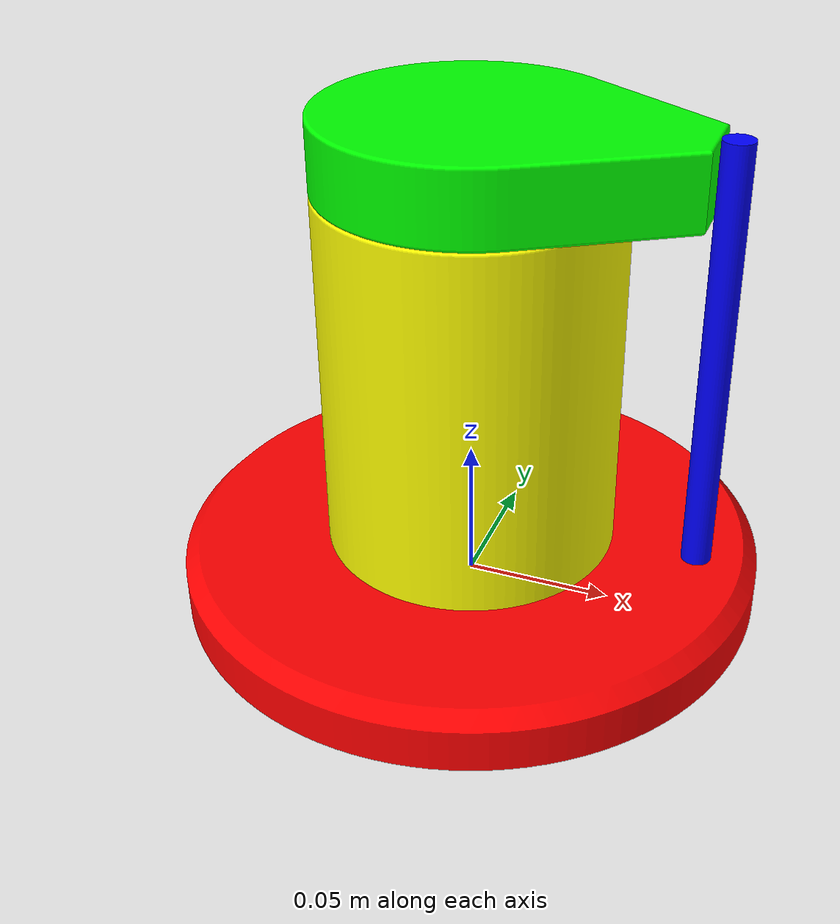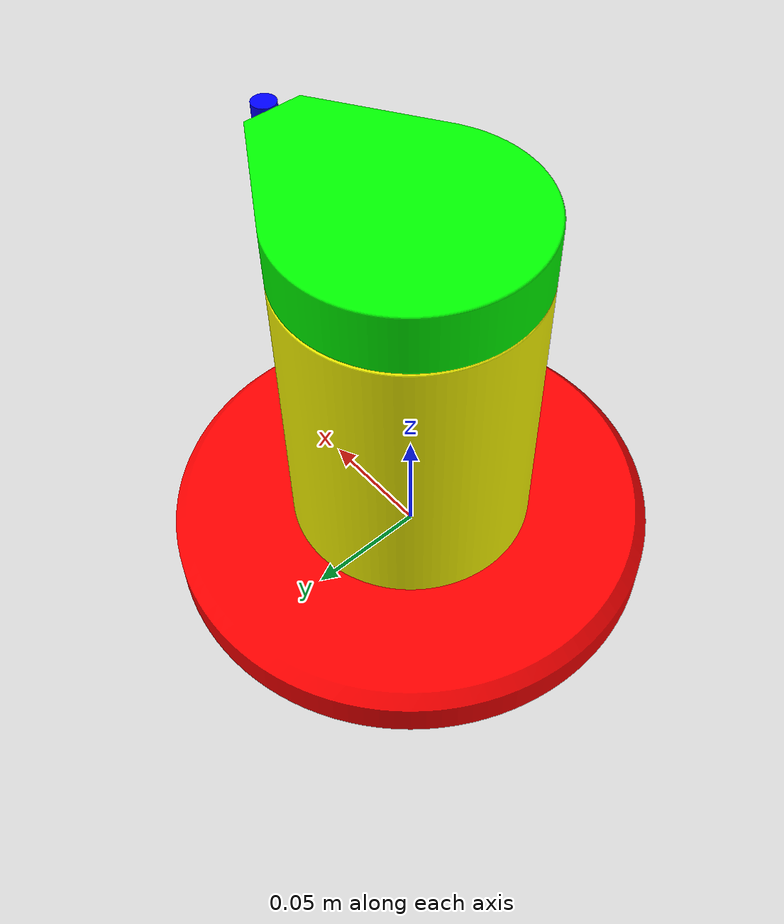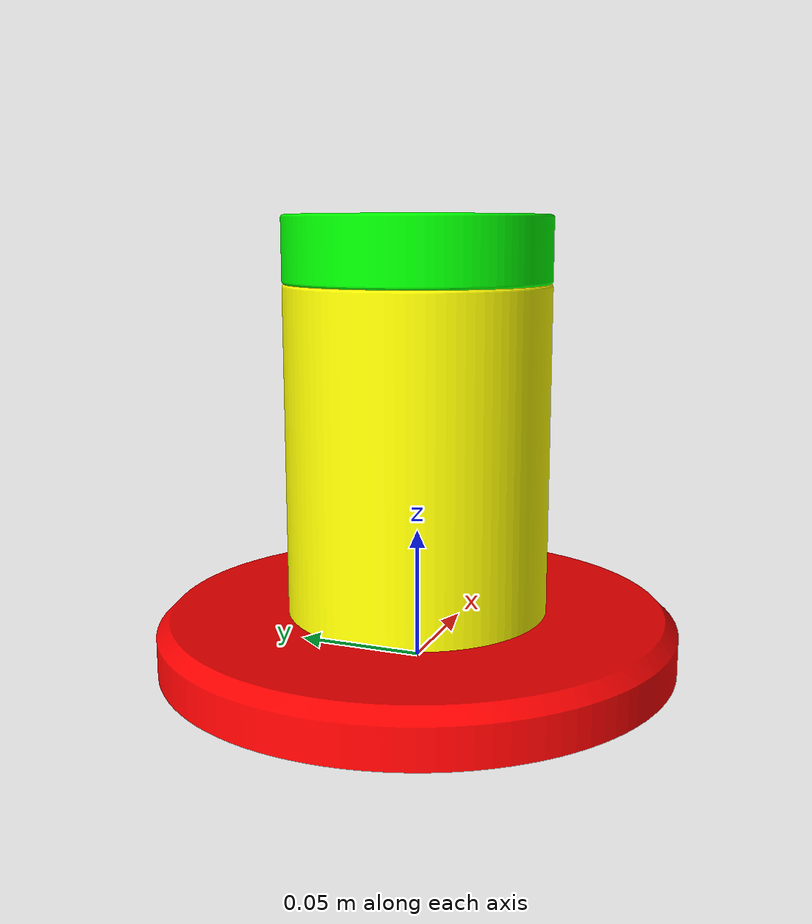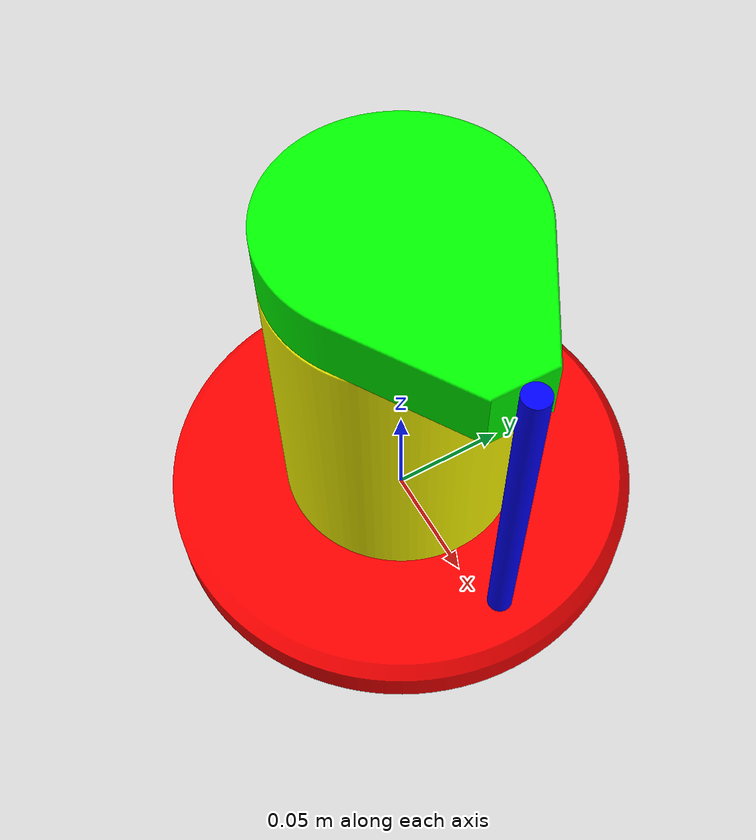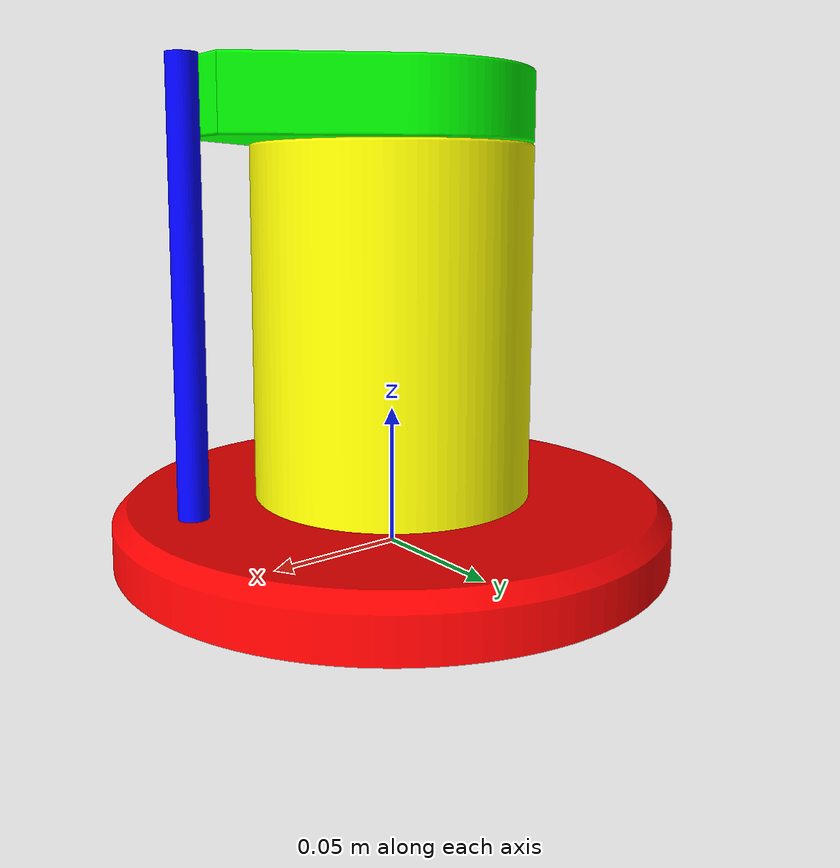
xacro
<?xml version="1.0" ?>
<robot name="fura2a" xmlns:xacro="http://www.ros.org/wiki/xacro">

<xacro:include filename="$(find fura2a)/urdf/materials.xacro" />
<xacro:include filename="$(find fura2a)/urdf/fura2a.gazebo" />
<xacro:include filename="$(find fura2a)/urdf/ros2_control.xacro" />

<link name="base_link">
  <inertial>
    <origin xyz="-1.4655194516233777e-17 0.0 0.009896382619700488" rpy="0 0 0"/>
    <mass value="50"/>
    <inertia ixx="0.012198" iyy="0.012198" izz="0.024075" ixy="-0.0" iyz="0.0" ixz="0.0"/>
  </inertial>
  <visual>
    <origin xyz="0 0 0" rpy="0 0 0"/>
    <geometry>
      <mesh filename="file://$(find fura2a)/meshes/base_link.stl" scale="0.001 0.001 0.001"/>
    </geometry>
    <material name="CustomRed"/>
  </visual>
  <collision>
    <origin xyz="0 0 0" rpy="0 0 0"/>
    <geometry>
      <mesh filename="file://$(find fura2a)/meshes/base_link.stl" scale="0.001 0.001 0.001"/>
    </geometry>
  </collision>
</link>

<link name="column">
  <inertial>
    <origin xyz="1.0658141036401502e-16 0.0 0.062495742145380256" rpy="0 0 0"/>
    <mass value="50"/>
    <inertia ixx="0.014849" iyy="0.014849" izz="0.009632" ixy="0.0" iyz="0.0" ixz="0.0"/>
  </inertial>
  <visual>
    <origin xyz="-0.0 -0.0 -0.02" rpy="0 0 0"/>
    <geometry>
      <mesh filename="file://$(find fura2a)/meshes/column.stl" scale="0.001 0.001 0.001"/>
    </geometry>
    <material name="CustomYellow"/>
  </visual>
  <collision>
    <origin xyz="-0.0 -0.0 -0.02" rpy="0 0 0"/>
    <geometry>
      <mesh filename="file://$(find fura2a)/meshes/column.stl" scale="0.001 0.001 0.001"/>
    </geometry>
  </collision>
</link>

<link name="arm">
  <inertial>
    <origin xyz="0.037500000000000006 -2.220446049250313e-18 0.0062500000000000056" rpy="0 0 0"/>
    <mass value="0.3"/>
    <inertia ixx="8.15286624e-06" iyy="1.42675159e-04" izz="1.42675159e-04" ixy="-0.0" iyz="0.0" ixz="0.0"/>
  </inertial>
  <visual>
    <origin xyz="-0.0 -0.0 -0.145" rpy="0 0 0"/>
    <geometry>
      <mesh filename="file://$(find fura2a)/meshes/hollowed_arm.stl" scale="0.001 0.001 0.001"/>
    </geometry>
    <material name="CustomGreen"/>
  </visual>
  <collision>
    <origin xyz="-0.0 -0.0 -0.145" rpy="0 0 0"/>
    <geometry>
      <mesh filename="file://$(find fura2a)/meshes/fake_arm.stl" scale="0.001 0.001 0.001"/>
    </geometry>
  </collision>
</link>

<link name="pendulum">
  <inertial>
    <origin xyz="0.0050000000000000044 -8.574075045622943e-18 -0.0675" rpy="0 0 0"/>
    <mass value="0.10597499999999999"/>
    <inertia ixx="0.000162" iyy="0.000162" izz="2e-06" ixy="0.0" iyz="-0.0" ixz="-0.0"/>
  </inertial>
  <visual>
    <origin xyz="-0.075 -0.0 -0.1575" rpy="0 0 0"/>
    <geometry>
      <mesh filename="file://$(find fura2a)/meshes/pendulum_down.stl" scale="0.001 0.001 0.001"/>
    </geometry>
    <material name="CustomBlue"/>
  </visual>
  <collision>
    <origin xyz="-0.075 0.0 -0.1575" rpy="0 0 0"/>
    <geometry>
      <mesh filename="file://$(find fura2a)/meshes/cuboid_pendulum.stl" scale="0.001 0.001 0.001"/>
    </geometry>
  </collision>
</link>

<joint name="base_column_joint" type="fixed">
  <origin xyz="0.0 0.0 0.02" rpy="0 0 0"/>
  <parent link="base_link"/>
  <child link="column"/>
</joint>

<joint name="arm_joint" type="continuous">
  <origin xyz="0.0 0.0 0.125" rpy="0 0 0"/>
  <parent link="column"/>
  <child link="arm"/>
  <axis xyz="0.0 0.0 1.0"/>
</joint>

<joint name="pendulum_joint" type="continuous">
  <origin xyz="0.075 0.0 0.0125" rpy="0 0 0"/>
  <parent link="arm"/>
  <child link="pendulum"/>
  <axis xyz="1.0 0.0 0.0"/>

</joint>

</robot>

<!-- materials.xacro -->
<robot xmlns:xacro="http://www.ros.org/wiki/xacro" name="materials">

  <!-- Define custom materials -->

  <!-- Silver Material -->
  <material name="Silver">
    <color rgba="0.75 0.75 0.75 1.0"/>
  </material>

  <!-- Custom Red Material -->
  <material name="CustomRed">
    <color rgba="1 0 0 1"/>
  </material>

  <!-- Custom Green Material -->
  <material name="CustomGreen">
    <color rgba="0 1 0 1"/>
  </material>

  <!-- Custom Blue Material -->
  <material name="CustomBlue">
    <color rgba="0 0 1 1"/>
  </material>

  <!-- Custom Yellow Material -->
  <material name="CustomYellow">
    <color rgba="1 1 0 1"/>
  </material>

  <!-- Custom Purple Material -->
  <material name="CustomPurple">
    <color rgba="0.5 0 0.5 1"/>
  </material>

  <!-- Add more materials as needed -->

</robot>

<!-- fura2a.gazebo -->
<robot name="fura2a" xmlns:xacro="http://www.ros.org/wiki/xacro" >

<xacro:property name="base_colour" value="Gazebo/Silver" />
<xacro:property name="column_colour" value="Gazebo/CustomRed" />
<xacro:property name="arm_colour" value="Gazebo/CustomPurple" />
<xacro:property name="pendulum_colour" value="Gazebo/CustomBlue" />

<gazebo reference="base_link">
  <material>${base_colour}</material>
  <mu1>1</mu1>
  <mu2>1</mu2>
  <self_collide>true</self_collide>
  <gravity>true</gravity>
</gazebo>

<gazebo reference="column">
  <material>${column_colour}</material>
  <mu1>0.01</mu1>
  <mu2>0.01</mu2>
  <self_collide>true</self_collide>
</gazebo>

<gazebo reference="arm">
  <material>${arm_colour}</material>
  <mu1>0.01</mu1>
  <mu2>0.01</mu2>
  <self_collide>true</self_collide>
</gazebo>

<gazebo reference="pendulum">
  <material>${pendulum_colour}</material>
  <mu1>0.01</mu1>
  <mu2>0.01</mu2>
  <self_collide>false</self_collide>
</gazebo>

</robot>
